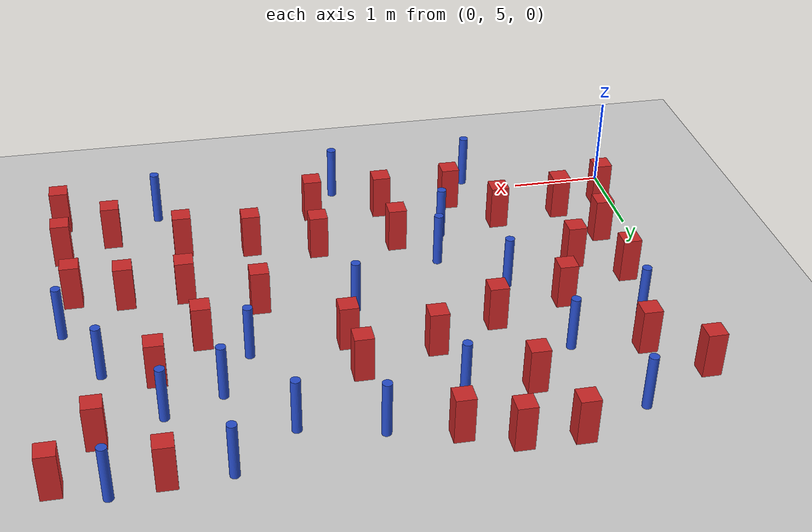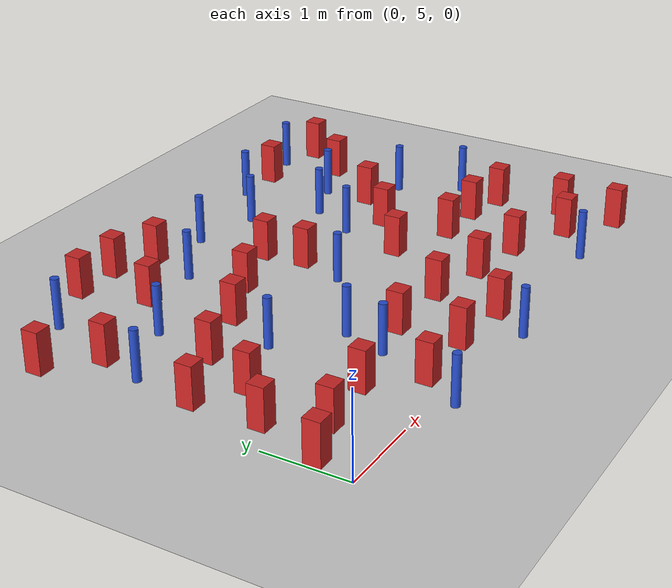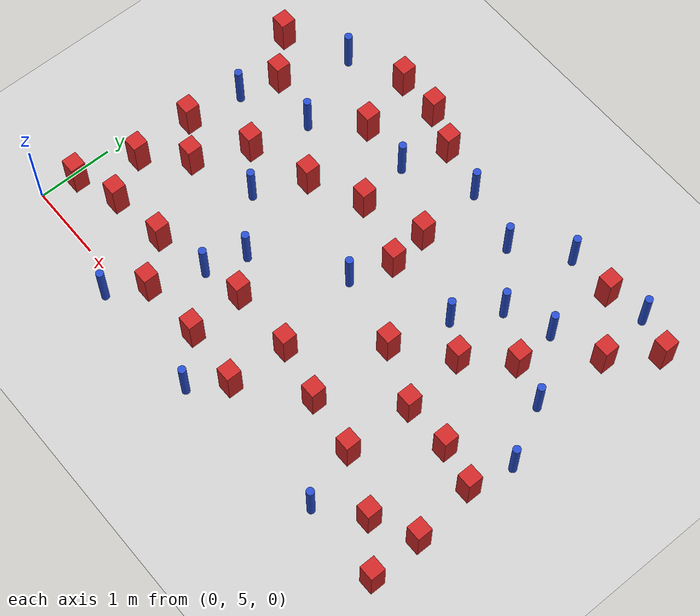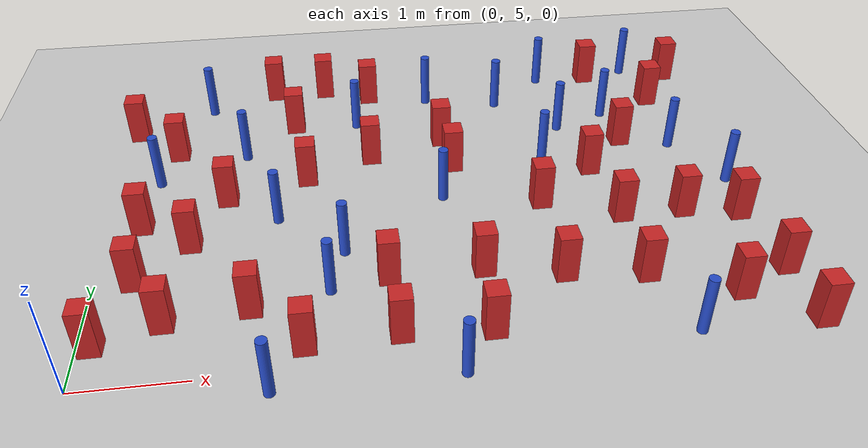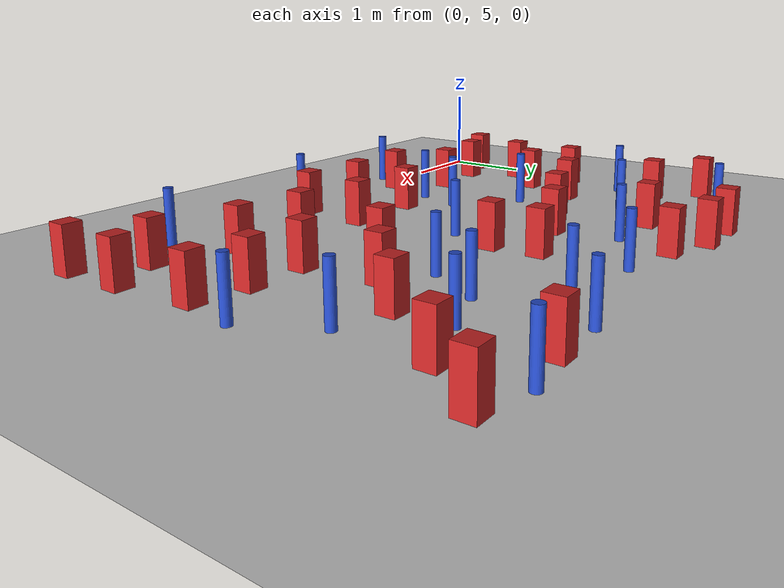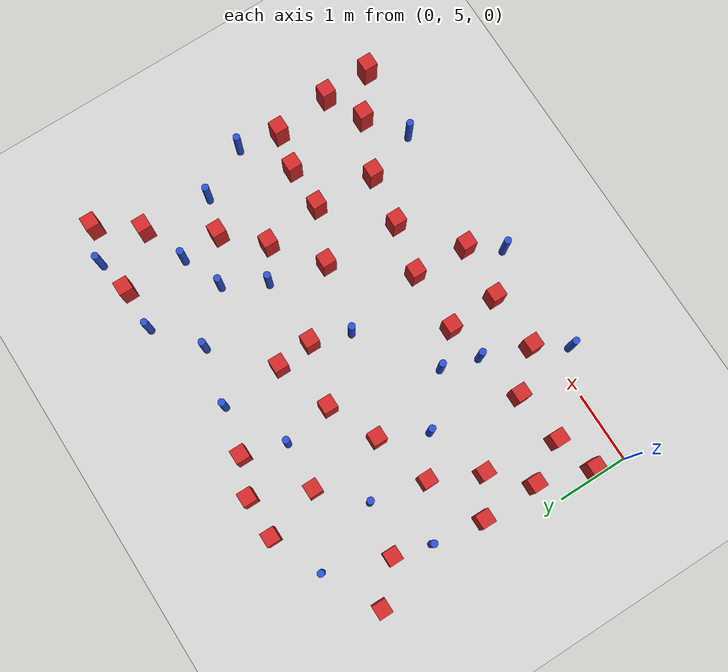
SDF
<sdf version="1.6">
 <world name="default">
  <model name="ground_plane">
   <static>1</static>
   <link name="link">
    <collision name="collision">
     <geometry><plane><normal>0 0 1</normal><size>100 100</size></plane></geometry>
     <surface><friction><ode><mu>100</mu><mu2>50</mu2></ode></friction></surface>
    </collision>
    <visual name="visual">
     <cast_shadows>0</cast_shadows>
     <geometry><plane><normal>0 0 1</normal><size>100 100</size></plane></geometry>
     <material>
      <ambient>1.0 1.0 1.0 1.0</ambient>
      <diffuse>0.8 0.8 0.8 1.0</diffuse>
      <specular>0.01 0.01 0.01 1.000000</specular>
     </material>
    </visual>
   </link>
  </model>
  <model name="pole_obstacle6">
   <static>true</static>
   <pose>4.22046325973 8.89876180597 2.88873142074e-08 -9.9053668967e-09 4.60219948993e-07 -1.20965994957e-07</pose>
   <link name="link">
    <pose>0 0 0.3 0 -0 0</pose>
    <inertial>
     <mass>1</mass>
     <inertia><ixx>0.145833</ixx><ixy>0</ixy><ixz>0</ixz><iyy>0.145833</iyy><iyz>0</iyz><izz>0.125</izz></inertia>
    </inertial>
    <collision name="collision">
     <geometry><cylinder><radius>0.05</radius><length>.6</length></cylinder></geometry>
    </collision>
    <visual name="visual">
     <geometry><cylinder><radius>0.05</radius><length>.6</length></cylinder></geometry>
     <material>
      <script><name>Gazebo/Blue</name><uri>file://media/materials/scripts/gazebo.material</uri></script>
     </material>
    </visual>
   </link>
  </model>
  <model name="square_post_obstacle2">
   <static>true</static>
   <pose>3.51886979271 5.21029539455 8.22691968438e-08 7.2212513382e-06 -7.54495500217e-07 2.29674213826e-05</pose>
   <link name="link">
    <pose>0 0 0.25 0 -0 0</pose>
    <inertial>
     <mass>100</mass>
     <inertia>
      <ixx>0.166667</ixx>
      <ixy>0</ixy>
      <ixz>0</ixz>
      <iyy>0.166667</iyy>
      <iyz>0</iyz>
      <izz>0.166667</izz>
     </inertia>
    </inertial>
    <collision name="collision"><geometry><box><size>.2 .2 .5</size></box></geometry></collision>
    <visual name="visual">
     <geometry><box><size>.2 .2 .5</size></box></geometry>
     <material>
      <script><name>Gazebo/Red</name><uri>file://media/materials/scripts/gazebo.material</uri></script>
     </material>
    </visual>
   </link>
  </model>
  <model name="pole_obstacle11">
   <static>true</static>
   <pose>3.21454982424 4.77770129587 2.88873142074e-08 -9.90536689859e-09 4.60219948989e-07 -1.20965994961e-07</pose>
   <link name="link">
    <pose>0 0 0.3 0 -0 0</pose>
    <inertial>
     <mass>1</mass>
     <inertia><ixx>0.145833</ixx><ixy>0</ixy><ixz>0</ixz><iyy>0.145833</iyy><iyz>0</iyz><izz>0.125</izz></inertia>
    </inertial>
    <collision name="collision">
     <geometry><cylinder><radius>0.05</radius><length>.6</length></cylinder></geometry>
    </collision>
    <visual name="visual">
     <geometry><cylinder><radius>0.05</radius><length>.6</length></cylinder></geometry>
     <material>
      <script><name>Gazebo/Blue</name><uri>file://media/materials/scripts/gazebo.material</uri></script>
     </material>
    </visual>
   </link>
  </model>
  <model name="square_post_obstacle9">
   <static>true</static>
   <pose>5.07672383665 6.60330566266 8.22691968438e-08 7.2212513382e-06 -7.54495500217e-07 2.29674213826e-05</pose>
   <link name="link">
    <pose>0 0 0.25 0 -0 0</pose>
    <inertial>
     <mass>100</mass>
     <inertia>
      <ixx>0.166667</ixx>
      <ixy>0</ixy>
      <ixz>0</ixz>
      <iyy>0.166667</iyy>
      <iyz>0</iyz>
      <izz>0.166667</izz>
     </inertia>
    </inertial>
    <collision name="collision"><geometry><box><size>.2 .2 .5</size></box></geometry></collision>
    <visual name="visual">
     <geometry><box><size>.2 .2 .5</size></box></geometry>
     <material>
      <script><name>Gazebo/Red</name><uri>file://media/materials/scripts/gazebo.material</uri></script>
     </material>
    </visual>
   </link>
  </model>
  <model name="pole_obstacle16">
   <static>true</static>
   <pose>2.30162837116 6.40875875563 2.88873142074e-08 -9.90536689859e-09 4.60219948989e-07 -1.20965994961e-07</pose>
   <link name="link">
    <pose>0 0 0.3 0 -0 0</pose>
    <inertial>
     <mass>1</mass>
     <inertia><ixx>0.145833</ixx><ixy>0</ixy><ixz>0</ixz><iyy>0.145833</iyy><iyz>0</iyz><izz>0.125</izz></inertia>
    </inertial>
    <collision name="collision">
     <geometry><cylinder><radius>0.05</radius><length>.6</length></cylinder></geometry>
    </collision>
    <visual name="visual">
     <geometry><cylinder><radius>0.05</radius><length>.6</length></cylinder></geometry>
     <material>
      <script><name>Gazebo/Blue</name><uri>file://media/materials/scripts/gazebo.material</uri></script>
     </material>
    </visual>
   </link>
  </model>
  <model name="square_post_obstacle13">
   <static>true</static>
   <pose>5.81158382822 5.38576274802 8.22691968438e-08 7.2212513382e-06 -7.54495500217e-07 2.29674213826e-05</pose>
   <link name="link">
    <pose>0 0 0.25 0 -0 0</pose>
    <inertial>
     <mass>100</mass>
     <inertia>
      <ixx>0.166667</ixx>
      <ixy>0</ixy>
      <ixz>0</ixz>
      <iyy>0.166667</iyy>
      <iyz>0</iyz>
      <izz>0.166667</izz>
     </inertia>
    </inertial>
    <collision name="collision"><geometry><box><size>.2 .2 .5</size></box></geometry></collision>
    <visual name="visual">
     <geometry><box><size>.2 .2 .5</size></box></geometry>
     <material>
      <script><name>Gazebo/Red</name><uri>file://media/materials/scripts/gazebo.material</uri></script>
     </material>
    </visual>
   </link>
  </model>
  <model name="square_post_obstacle15">
   <static>true</static>
   <pose>6.05378696804 8.75191636952 8.22691968438e-08 7.22125133819e-06 -7.54495500217e-07 2.29674213826e-05</pose>
   <link name="link">
    <pose>0 0 0.25 0 -0 0</pose>
    <inertial>
     <mass>100</mass>
     <inertia>
      <ixx>0.166667</ixx>
      <ixy>0</ixy>
      <ixz>0</ixz>
      <iyy>0.166667</iyy>
      <iyz>0</iyz>
      <izz>0.166667</izz>
     </inertia>
    </inertial>
    <collision name="collision"><geometry><box><size>.2 .2 .5</size></box></geometry></collision>
    <visual name="visual">
     <geometry><box><size>.2 .2 .5</size></box></geometry>
     <material>
      <script><name>Gazebo/Red</name><uri>file://media/materials/scripts/gazebo.material</uri></script>
     </material>
    </visual>
   </link>
  </model>
  <model name="pole_obstacle23">
   <static>true</static>
   <pose>1.32292772586 8.14820011121 2.88873142074e-08 -9.90536690474e-09 4.60219948974e-07 -1.2096599497e-07</pose>
   <link name="link">
    <pose>0 0 0.3 0 -0 0</pose>
    <inertial>
     <mass>1</mass>
     <inertia><ixx>0.145833</ixx><ixy>0</ixy><ixz>0</ixz><iyy>0.145833</iyy><iyz>0</iyz><izz>0.125</izz></inertia>
    </inertial>
    <collision name="collision">
     <geometry><cylinder><radius>0.05</radius><length>.6</length></cylinder></geometry>
    </collision>
    <visual name="visual">
     <geometry><cylinder><radius>0.05</radius><length>.6</length></cylinder></geometry>
     <material>
      <script><name>Gazebo/Blue</name><uri>file://media/materials/scripts/gazebo.material</uri></script>
     </material>
    </visual>
   </link>
  </model>
  <model name="square_post_obstacle24">
   <static>true</static>
   <pose>0.113420928763 8.74636391603 8.22691968438e-08 7.22125133819e-06 -7.54495500217e-07 2.29674213826e-05</pose>
   <link name="link">
    <pose>0 0 0.25 0 -0 0</pose>
    <inertial>
     <mass>100</mass>
     <inertia>
      <ixx>0.166667</ixx>
      <ixy>0</ixy>
      <ixz>0</ixz>
      <iyy>0.166667</iyy>
      <iyz>0</iyz>
      <izz>0.166667</izz>
     </inertia>
    </inertial>
    <collision name="collision"><geometry><box><size>.2 .2 .5</size></box></geometry></collision>
    <visual name="visual">
     <geometry><box><size>.2 .2 .5</size></box></geometry>
     <material>
      <script><name>Gazebo/Red</name><uri>file://media/materials/scripts/gazebo.material</uri></script>
     </material>
    </visual>
   </link>
  </model>
  <model name="square_post_obstacle25">
   <static>true</static>
   <pose>4.97284607775 7.43642797296 8.22691968438e-08 7.2212513382e-06 -7.54495500217e-07 2.29674213826e-05</pose>
   <link name="link">
    <pose>0 0 0.25 0 -0 0</pose>
    <inertial>
     <mass>100</mass>
     <inertia>
      <ixx>0.166667</ixx>
      <ixy>0</ixy>
      <ixz>0</ixz>
      <iyy>0.166667</iyy>
      <iyz>0</iyz>
      <izz>0.166667</izz>
     </inertia>
    </inertial>
    <collision name="collision"><geometry><box><size>.2 .2 .5</size></box></geometry></collision>
    <visual name="visual">
     <geometry><box><size>.2 .2 .5</size></box></geometry>
     <material>
      <script><name>Gazebo/Red</name><uri>file://media/materials/scripts/gazebo.material</uri></script>
     </material>
    </visual>
   </link>
  </model>
  <model name="square_post_obstacle30">
   <static>true</static>
   <pose>1.4470258372 5.73822127395 8.22691968438e-08 7.2212513382e-06 -7.54495500217e-07 2.29674213826e-05</pose>
   <link name="link">
    <pose>0 0 0.25 0 -0 0</pose>
    <inertial>
     <mass>100</mass>
     <inertia>
      <ixx>0.166667</ixx>
      <ixy>0</ixy>
      <ixz>0</ixz>
      <iyy>0.166667</iyy>
      <iyz>0</iyz>
      <izz>0.166667</izz>
     </inertia>
    </inertial>
    <collision name="collision"><geometry><box><size>.2 .2 .5</size></box></geometry></collision>
    <visual name="visual">
     <geometry><box><size>.2 .2 .5</size></box></geometry>
     <material>
      <script><name>Gazebo/Red</name><uri>file://media/materials/scripts/gazebo.material</uri></script>
     </material>
    </visual>
   </link>
  </model>
  <model name="pole_obstacle41">
   <static>true</static>
   <pose>0.899352378228 9.15873301165 2.88873142074e-08 -9.90536690779e-09 4.60219948967e-07 -1.20965994975e-07</pose>
   <link name="link">
    <pose>0 0 0.3 0 -0 0</pose>
    <inertial>
     <mass>1</mass>
     <inertia><ixx>0.145833</ixx><ixy>0</ixy><ixz>0</ixz><iyy>0.145833</iyy><iyz>0</iyz><izz>0.125</izz></inertia>
    </inertial>
    <collision name="collision">
     <geometry><cylinder><radius>0.05</radius><length>.6</length></cylinder></geometry>
    </collision>
    <visual name="visual">
     <geometry><cylinder><radius>0.05</radius><length>.6</length></cylinder></geometry>
     <material>
      <script><name>Gazebo/Blue</name><uri>file://media/materials/scripts/gazebo.material</uri></script>
     </material>
    </visual>
   </link>
  </model>
  <model name="square_post_obstacle31">
   <static>true</static>
   <pose>4.32650749568 6.92393562034 8.22691968438e-08 7.2212513382e-06 -7.54495500217e-07 2.29674213826e-05</pose>
   <link name="link">
    <pose>0 0 0.25 0 -0 0</pose>
    <inertial>
     <mass>100</mass>
     <inertia>
      <ixx>0.166667</ixx>
      <ixy>0</ixy>
      <ixz>0</ixz>
      <iyy>0.166667</iyy>
      <iyz>0</iyz>
      <izz>0.166667</izz>
     </inertia>
    </inertial>
    <collision name="collision"><geometry><box><size>.2 .2 .5</size></box></geometry></collision>
    <visual name="visual">
     <geometry><box><size>.2 .2 .5</size></box></geometry>
     <material>
      <script><name>Gazebo/Red</name><uri>file://media/materials/scripts/gazebo.material</uri></script>
     </material>
    </visual>
   </link>
  </model>
  <model name="pole_obstacle43">
   <static>true</static>
   <pose>3.40829630708 9.08948920971 2.88873142074e-08 -9.90536692318e-09 4.6021994893e-07 -1.20965994988e-07</pose>
   <link name="link">
    <pose>0 0 0.3 0 -0 0</pose>
    <inertial>
     <mass>1</mass>
     <inertia><ixx>0.145833</ixx><ixy>0</ixy><ixz>0</ixz><iyy>0.145833</iyy><iyz>0</iyz><izz>0.125</izz></inertia>
    </inertial>
    <collision name="collision">
     <geometry><cylinder><radius>0.05</radius><length>.6</length></cylinder></geometry>
    </collision>
    <visual name="visual">
     <geometry><cylinder><radius>0.05</radius><length>.6</length></cylinder></geometry>
     <material>
      <script><name>Gazebo/Blue</name><uri>file://media/materials/scripts/gazebo.material</uri></script>
     </material>
    </visual>
   </link>
  </model>
  <model name="square_post_obstacle38">
   <static>true</static>
   <pose>3.56726255685 5.98754879618 8.22691968438e-08 7.2212513382e-06 -7.54495500217e-07 2.29674213826e-05</pose>
   <link name="link">
    <pose>0 0 0.25 0 -0 0</pose>
    <inertial>
     <mass>100</mass>
     <inertia>
      <ixx>0.166667</ixx>
      <ixy>0</ixy>
      <ixz>0</ixz>
      <iyy>0.166667</iyy>
      <iyz>0</iyz>
      <izz>0.166667</izz>
     </inertia>
    </inertial>
    <collision name="collision"><geometry><box><size>.2 .2 .5</size></box></geometry></collision>
    <visual name="visual">
     <geometry><box><size>.2 .2 .5</size></box></geometry>
     <material>
      <script><name>Gazebo/Red</name><uri>file://media/materials/scripts/gazebo.material</uri></script>
     </material>
    </visual>
   </link>
  </model>
  <model name="pole_obstacle55">
   <static>true</static>
   <pose>0.443394616955 7.76191521064 2.88873142074e-08 -9.90536689683e-09 4.60219948993e-07 -1.20965994957e-07</pose>
   <link name="link">
    <pose>0 0 0.3 0 -0 0</pose>
    <inertial>
     <mass>1</mass>
     <inertia><ixx>0.145833</ixx><ixy>0</ixy><ixz>0</ixz><iyy>0.145833</iyy><iyz>0</iyz><izz>0.125</izz></inertia>
    </inertial>
    <collision name="collision">
     <geometry><cylinder><radius>0.05</radius><length>.6</length></cylinder></geometry>
    </collision>
    <visual name="visual">
     <geometry><cylinder><radius>0.05</radius><length>.6</length></cylinder></geometry>
     <material>
      <script><name>Gazebo/Blue</name><uri>file://media/materials/scripts/gazebo.material</uri></script>
     </material>
    </visual>
   </link>
  </model>
  <model name="pole_obstacle56">
   <static>true</static>
   <pose>4.52452395426 7.71323931481 2.88873142074e-08 -9.90536690842e-09 4.60219948965e-07 -1.20965994976e-07</pose>
   <link name="link">
    <pose>0 0 0.3 0 -0 0</pose>
    <inertial>
     <mass>1</mass>
     <inertia><ixx>0.145833</ixx><ixy>0</ixy><ixz>0</ixz><iyy>0.145833</iyy><iyz>0</iyz><izz>0.125</izz></inertia>
    </inertial>
    <collision name="collision">
     <geometry><cylinder><radius>0.05</radius><length>.6</length></cylinder></geometry>
    </collision>
    <visual name="visual">
     <geometry><cylinder><radius>0.05</radius><length>.6</length></cylinder></geometry>
     <material>
      <script><name>Gazebo/Blue</name><uri>file://media/materials/scripts/gazebo.material</uri></script>
     </material>
    </visual>
   </link>
  </model>
  <model name="pole_obstacle64">
   <static>true</static>
   <pose>5.96547266339 9.49017356136 2.88873142074e-08 -9.9053668967e-09 4.60219948993e-07 -1.20965994957e-07</pose>
   <link name="link">
    <pose>0 0 0.3 0 -0 0</pose>
    <inertial>
     <mass>1</mass>
     <inertia><ixx>0.145833</ixx><ixy>0</ixy><ixz>0</ixz><iyy>0.145833</iyy><iyz>0</iyz><izz>0.125</izz></inertia>
    </inertial>
    <collision name="collision">
     <geometry><cylinder><radius>0.05</radius><length>.6</length></cylinder></geometry>
    </collision>
    <visual name="visual">
     <geometry><cylinder><radius>0.05</radius><length>.6</length></cylinder></geometry>
     <material>
      <script><name>Gazebo/Blue</name><uri>file://media/materials/scripts/gazebo.material</uri></script>
     </material>
    </visual>
   </link>
  </model>
  <model name="square_post_obstacle50">
   <static>true</static>
   <pose>5.04219597152 5.71919740872 8.22691968438e-08 7.2212513382e-06 -7.54495500217e-07 2.29674213826e-05</pose>
   <link name="link">
    <pose>0 0 0.25 0 -0 0</pose>
    <inertial>
     <mass>100</mass>
     <inertia>
      <ixx>0.166667</ixx>
      <ixy>0</ixy>
      <ixz>0</ixz>
      <iyy>0.166667</iyy>
      <iyz>0</iyz>
      <izz>0.166667</izz>
     </inertia>
    </inertial>
    <collision name="collision"><geometry><box><size>.2 .2 .5</size></box></geometry></collision>
    <visual name="visual">
     <geometry><box><size>.2 .2 .5</size></box></geometry>
     <material>
      <script><name>Gazebo/Red</name><uri>file://media/materials/scripts/gazebo.material</uri></script>
     </material>
    </visual>
   </link>
  </model>
  <model name="square_post_obstacle52">
   <static>true</static>
   <pose>0.133570180541 5.45676671177 8.22691968438e-08 7.2212513382e-06 -7.54495500217e-07 2.29674213826e-05</pose>
   <link name="link">
    <pose>0 0 0.25 0 -0 0</pose>
    <inertial>
     <mass>100</mass>
     <inertia>
      <ixx>0.166667</ixx>
      <ixy>0</ixy>
      <ixz>0</ixz>
      <iyy>0.166667</iyy>
      <iyz>0</iyz>
      <izz>0.166667</izz>
     </inertia>
    </inertial>
    <collision name="collision"><geometry><box><size>.2 .2 .5</size></box></geometry></collision>
    <visual name="visual">
     <geometry><box><size>.2 .2 .5</size></box></geometry>
     <material>
      <script><name>Gazebo/Red</name><uri>file://media/materials/scripts/gazebo.material</uri></script>
     </material>
    </visual>
   </link>
  </model>
  <model name="square_post_obstacle56">
   <static>true</static>
   <pose>1.62956645404 9.46225908693 8.22691968438e-08 7.22125133819e-06 -7.54495500217e-07 2.29674213826e-05</pose>
   <link name="link">
    <pose>0 0 0.25 0 -0 0</pose>
    <inertial>
     <mass>100</mass>
     <inertia>
      <ixx>0.166667</ixx>
      <ixy>0</ixy>
      <ixz>0</ixz>
      <iyy>0.166667</iyy>
      <iyz>0</iyz>
      <izz>0.166667</izz>
     </inertia>
    </inertial>
    <collision name="collision"><geometry><box><size>.2 .2 .5</size></box></geometry></collision>
    <visual name="visual">
     <geometry><box><size>.2 .2 .5</size></box></geometry>
     <material>
      <script><name>Gazebo/Red</name><uri>file://media/materials/scripts/gazebo.material</uri></script>
     </material>
    </visual>
   </link>
  </model>
  <model name="square_post_obstacle65">
   <static>true</static>
   <pose>1.90731623586 5.23412859087 8.22691968438e-08 7.2212513382e-06 -7.54495500217e-07 2.29674213826e-05</pose>
   <link name="link">
    <pose>0 0 0.25 0 -0 0</pose>
    <inertial>
     <mass>100</mass>
     <inertia>
      <ixx>0.166667</ixx>
      <ixy>0</ixy>
      <ixz>0</ixz>
      <iyy>0.166667</iyy>
      <iyz>0</iyz>
      <izz>0.166667</izz>
     </inertia>
    </inertial>
    <collision name="collision"><geometry><box><size>.2 .2 .5</size></box></geometry></collision>
    <visual name="visual">
     <geometry><box><size>.2 .2 .5</size></box></geometry>
     <material>
      <script><name>Gazebo/Red</name><uri>file://media/materials/scripts/gazebo.material</uri></script>
     </material>
    </visual>
   </link>
  </model>
  <model name="square_post_obstacle66">
   <static>true</static>
   <pose>2.73113315941 9.24209433608 8.22691968438e-08 7.22125133819e-06 -7.54495500217e-07 2.29674213826e-05</pose>
   <link name="link">
    <pose>0 0 0.25 0 -0 0</pose>
    <inertial>
     <mass>100</mass>
     <inertia>
      <ixx>0.166667</ixx>
      <ixy>0</ixy>
      <ixz>0</ixz>
      <iyy>0.166667</iyy>
      <iyz>0</iyz>
      <izz>0.166667</izz>
     </inertia>
    </inertial>
    <collision name="collision"><geometry><box><size>.2 .2 .5</size></box></geometry></collision>
    <visual name="visual">
     <geometry><box><size>.2 .2 .5</size></box></geometry>
     <material>
      <script><name>Gazebo/Red</name><uri>file://media/materials/scripts/gazebo.material</uri></script>
     </material>
    </visual>
   </link>
  </model>
  <model name="square_post_obstacle68">
   <static>true</static>
   <pose>5.45128388711 9.38837965538 8.22691968438e-08 7.22125133819e-06 -7.54495500217e-07 2.29674213826e-05</pose>
   <link name="link">
    <pose>0 0 0.25 0 -0 0</pose>
    <inertial>
     <mass>100</mass>
     <inertia>
      <ixx>0.166667</ixx>
      <ixy>0</ixy>
      <ixz>0</ixz>
      <iyy>0.166667</iyy>
      <iyz>0</iyz>
      <izz>0.166667</izz>
     </inertia>
    </inertial>
    <collision name="collision"><geometry><box><size>.2 .2 .5</size></box></geometry></collision>
    <visual name="visual">
     <geometry><box><size>.2 .2 .5</size></box></geometry>
     <material>
      <script><name>Gazebo/Red</name><uri>file://media/materials/scripts/gazebo.material</uri></script>
     </material>
    </visual>
   </link>
  </model>
  <model name="square_post_obstacle72">
   <static>true</static>
   <pose>0.845611340505 6.69355127158 8.22691968438e-08 7.2212513382e-06 -7.54495500217e-07 2.29674213826e-05</pose>
   <link name="link">
    <pose>0 0 0.25 0 -0 0</pose>
    <inertial>
     <mass>100</mass>
     <inertia>
      <ixx>0.166667</ixx>
      <ixy>0</ixy>
      <ixz>0</ixz>
      <iyy>0.166667</iyy>
      <iyz>0</iyz>
      <izz>0.166667</izz>
     </inertia>
    </inertial>
    <collision name="collision"><geometry><box><size>.2 .2 .5</size></box></geometry></collision>
    <visual name="visual">
     <geometry><box><size>.2 .2 .5</size></box></geometry>
     <material>
      <script><name>Gazebo/Red</name><uri>file://media/materials/scripts/gazebo.material</uri></script>
     </material>
    </visual>
   </link>
  </model>
  <model name="square_post_obstacle90">
   <static>true</static>
   <pose>1.16206302694 7.3760330887 8.22691968438e-08 7.2212513382e-06 -7.54495500217e-07 2.29674213826e-05</pose>
   <link name="link">
    <pose>0 0 0.25 0 -0 0</pose>
    <inertial>
     <mass>100</mass>
     <inertia>
      <ixx>0.166667</ixx>
      <ixy>0</ixy>
      <ixz>0</ixz>
      <iyy>0.166667</iyy>
      <iyz>0</iyz>
      <izz>0.166667</izz>
     </inertia>
    </inertial>
    <collision name="collision"><geometry><box><size>.2 .2 .5</size></box></geometry></collision>
    <visual name="visual">
     <geometry><box><size>.2 .2 .5</size></box></geometry>
     <material>
      <script><name>Gazebo/Red</name><uri>file://media/materials/scripts/gazebo.material</uri></script>
     </material>
    </visual>
   </link>
  </model>
  <model name="square_post_obstacle93">
   <static>true</static>
   <pose>2.66865635406 7.94502433171 8.22691968438e-08 7.22125133819e-06 -7.54495500217e-07 2.29674213826e-05</pose>
   <link name="link">
    <pose>0 0 0.25 0 -0 0</pose>
    <inertial>
     <mass>100</mass>
     <inertia>
      <ixx>0.166667</ixx>
      <ixy>0</ixy>
      <ixz>0</ixz>
      <iyy>0.166667</iyy>
      <iyz>0</iyz>
      <izz>0.166667</izz>
     </inertia>
    </inertial>
    <collision name="collision"><geometry><box><size>.2 .2 .5</size></box></geometry></collision>
    <visual name="visual">
     <geometry><box><size>.2 .2 .5</size></box></geometry>
     <material>
      <script><name>Gazebo/Red</name><uri>file://media/materials/scripts/gazebo.material</uri></script>
     </material>
    </visual>
   </link>
  </model>
  <model name="pole_obstacle104">
   <static>true</static>
   <pose>2.55107720086 8.64581301646 2.88873142074e-08 -9.90536692318e-09 4.6021994893e-07 -1.20965994988e-07</pose>
   <link name="link">
    <pose>0 0 0.3 0 -0 0</pose>
    <inertial>
     <mass>1</mass>
     <inertia><ixx>0.145833</ixx><ixy>0</ixy><ixz>0</ixz><iyy>0.145833</iyy><iyz>0</iyz><izz>0.125</izz></inertia>
    </inertial>
    <collision name="collision">
     <geometry><cylinder><radius>0.05</radius><length>.6</length></cylinder></geometry>
    </collision>
    <visual name="visual">
     <geometry><cylinder><radius>0.05</radius><length>.6</length></cylinder></geometry>
     <material>
      <script><name>Gazebo/Blue</name><uri>file://media/materials/scripts/gazebo.material</uri></script>
     </material>
    </visual>
   </link>
  </model>
  <model name="pole_obstacle105">
   <static>true</static>
   <pose>5.42131177291 8.51209517468 2.88873142074e-08 -9.9053668967e-09 4.60219948993e-07 -1.20965994957e-07</pose>
   <link name="link">
    <pose>0 0 0.3 0 -0 0</pose>
    <inertial>
     <mass>1</mass>
     <inertia><ixx>0.145833</ixx><ixy>0</ixy><ixz>0</ixz><iyy>0.145833</iyy><iyz>0</iyz><izz>0.125</izz></inertia>
    </inertial>
    <collision name="collision">
     <geometry><cylinder><radius>0.05</radius><length>.6</length></cylinder></geometry>
    </collision>
    <visual name="visual">
     <geometry><cylinder><radius>0.05</radius><length>.6</length></cylinder></geometry>
     <material>
      <script><name>Gazebo/Blue</name><uri>file://media/materials/scripts/gazebo.material</uri></script>
     </material>
    </visual>
   </link>
  </model>
  <model name="pole_obstacle106">
   <static>true</static>
   <pose>3.34924388034 7.14173322824 2.88873142074e-08 -9.90536689859e-09 4.60219948989e-07 -1.20965994961e-07</pose>
   <link name="link">
    <pose>0 0 0.3 0 -0 0</pose>
    <inertial>
     <mass>1</mass>
     <inertia><ixx>0.145833</ixx><ixy>0</ixy><ixz>0</ixz><iyy>0.145833</iyy><iyz>0</iyz><izz>0.125</izz></inertia>
    </inertial>
    <collision name="collision">
     <geometry><cylinder><radius>0.05</radius><length>.6</length></cylinder></geometry>
    </collision>
    <visual name="visual">
     <geometry><cylinder><radius>0.05</radius><length>.6</length></cylinder></geometry>
     <material>
      <script><name>Gazebo/Blue</name><uri>file://media/materials/scripts/gazebo.material</uri></script>
     </material>
    </visual>
   </link>
  </model>
  <model name="square_post_obstacle104">
   <static>true</static>
   <pose>5.70959949036 6.59898730295 8.22691968438e-08 7.2212513382e-06 -7.54495500217e-07 2.29674213826e-05</pose>
   <link name="link">
    <pose>0 0 0.25 0 -0 0</pose>
    <inertial>
     <mass>100</mass>
     <inertia>
      <ixx>0.166667</ixx>
      <ixy>0</ixy>
      <ixz>0</ixz>
      <iyy>0.166667</iyy>
      <iyz>0</iyz>
      <izz>0.166667</izz>
     </inertia>
    </inertial>
    <collision name="collision"><geometry><box><size>.2 .2 .5</size></box></geometry></collision>
    <visual name="visual">
     <geometry><box><size>.2 .2 .5</size></box></geometry>
     <material>
      <script><name>Gazebo/Red</name><uri>file://media/materials/scripts/gazebo.material</uri></script>
     </material>
    </visual>
   </link>
  </model>
  <model name="pole_obstacle114">
   <static>true</static>
   <pose>1.61997766648 4.78340791397 2.88873142074e-08 -9.90536689852e-09 4.60219948989e-07 -1.2096599496e-07</pose>
   <link name="link">
    <pose>0 0 0.3 0 -0 0</pose>
    <inertial>
     <mass>1</mass>
     <inertia><ixx>0.145833</ixx><ixy>0</ixy><ixz>0</ixz><iyy>0.145833</iyy><iyz>0</iyz><izz>0.125</izz></inertia>
    </inertial>
    <collision name="collision">
     <geometry><cylinder><radius>0.05</radius><length>.6</length></cylinder></geometry>
    </collision>
    <visual name="visual">
     <geometry><cylinder><radius>0.05</radius><length>.6</length></cylinder></geometry>
     <material>
      <script><name>Gazebo/Blue</name><uri>file://media/materials/scripts/gazebo.material</uri></script>
     </material>
    </visual>
   </link>
  </model>
  <model name="square_post_obstacle111">
   <static>true</static>
   <pose>3.46966602128 8.19968832513 8.22691968438e-08 7.22125133819e-06 -7.54495500217e-07 2.29674213826e-05</pose>
   <link name="link">
    <pose>0 0 0.25 0 -0 0</pose>
    <inertial>
     <mass>100</mass>
     <inertia>
      <ixx>0.166667</ixx>
      <ixy>0</ixy>
      <ixz>0</ixz>
      <iyy>0.166667</iyy>
      <iyz>0</iyz>
      <izz>0.166667</izz>
     </inertia>
    </inertial>
    <collision name="collision"><geometry><box><size>.2 .2 .5</size></box></geometry></collision>
    <visual name="visual">
     <geometry><box><size>.2 .2 .5</size></box></geometry>
     <material>
      <script><name>Gazebo/Red</name><uri>file://media/materials/scripts/gazebo.material</uri></script>
     </material>
    </visual>
   </link>
  </model>
  <model name="square_post_obstacle113">
   <static>true</static>
   <pose>0.697155674342 5.65302463057 8.22691968438e-08 7.2212513382e-06 -7.54495500217e-07 2.29674213826e-05</pose>
   <link name="link">
    <pose>0 0 0.25 0 -0 0</pose>
    <inertial>
     <mass>100</mass>
     <inertia>
      <ixx>0.166667</ixx>
      <ixy>0</ixy>
      <ixz>0</ixz>
      <iyy>0.166667</iyy>
      <iyz>0</iyz>
      <izz>0.166667</izz>
     </inertia>
    </inertial>
    <collision name="collision"><geometry><box><size>.2 .2 .5</size></box></geometry></collision>
    <visual name="visual">
     <geometry><box><size>.2 .2 .5</size></box></geometry>
     <material>
      <script><name>Gazebo/Red</name><uri>file://media/materials/scripts/gazebo.material</uri></script>
     </material>
    </visual>
   </link>
  </model>
  <model name="square_post_obstacle116">
   <static>true</static>
   <pose>6.45632784729 9.31877201313 8.22691968438e-08 7.22125133819e-06 -7.54495500217e-07 2.29674213826e-05</pose>
   <link name="link">
    <pose>0 0 0.25 0 -0 0</pose>
    <inertial>
     <mass>100</mass>
     <inertia>
      <ixx>0.166667</ixx>
      <ixy>0</ixy>
      <ixz>0</ixz>
      <iyy>0.166667</iyy>
      <iyz>0</iyz>
      <izz>0.166667</izz>
     </inertia>
    </inertial>
    <collision name="collision"><geometry><box><size>.2 .2 .5</size></box></geometry></collision>
    <visual name="visual">
     <geometry><box><size>.2 .2 .5</size></box></geometry>
     <material>
      <script><name>Gazebo/Red</name><uri>file://media/materials/scripts/gazebo.material</uri></script>
     </material>
    </visual>
   </link>
  </model>
  <model name="pole_obstacle121">
   <static>true</static>
   <pose>6.37049987156 7.05702769871 2.88873142074e-08 -9.90536690842e-09 4.60219948965e-07 -1.20965994976e-07</pose>
   <link name="link">
    <pose>0 0 0.3 0 -0 0</pose>
    <inertial>
     <mass>1</mass>
     <inertia><ixx>0.145833</ixx><ixy>0</ixy><ixz>0</ixz><iyy>0.145833</iyy><iyz>0</iyz><izz>0.125</izz></inertia>
    </inertial>
    <collision name="collision">
     <geometry><cylinder><radius>0.05</radius><length>.6</length></cylinder></geometry>
    </collision>
    <visual name="visual">
     <geometry><cylinder><radius>0.05</radius><length>.6</length></cylinder></geometry>
     <material>
      <script><name>Gazebo/Blue</name><uri>file://media/materials/scripts/gazebo.material</uri></script>
     </material>
    </visual>
   </link>
  </model>
  <model name="pole_obstacle125">
   <static>true</static>
   <pose>5.28513373353 4.97409333417 2.88873142074e-08 -9.90536690842e-09 4.60219948965e-07 -1.20965994976e-07</pose>
   <link name="link">
    <pose>0 0 0.3 0 -0 0</pose>
    <inertial>
     <mass>1</mass>
     <inertia><ixx>0.145833</ixx><ixy>0</ixy><ixz>0</ixz><iyy>0.145833</iyy><iyz>0</iyz><izz>0.125</izz></inertia>
    </inertial>
    <collision name="collision">
     <geometry><cylinder><radius>0.05</radius><length>.6</length></cylinder></geometry>
    </collision>
    <visual name="visual">
     <geometry><cylinder><radius>0.05</radius><length>.6</length></cylinder></geometry>
     <material>
      <script><name>Gazebo/Blue</name><uri>file://media/materials/scripts/gazebo.material</uri></script>
     </material>
    </visual>
   </link>
  </model>
  <model name="square_post_obstacle124">
   <static>true</static>
   <pose>2.68617334606 5.99470783008 8.22691968438e-08 7.2212513382e-06 -7.54495500217e-07 2.29674213826e-05</pose>
   <link name="link">
    <pose>0 0 0.25 0 -0 0</pose>
    <inertial>
     <mass>100</mass>
     <inertia>
      <ixx>0.166667</ixx>
      <ixy>0</ixy>
      <ixz>0</ixz>
      <iyy>0.166667</iyy>
      <iyz>0</iyz>
      <izz>0.166667</izz>
     </inertia>
    </inertial>
    <collision name="collision"><geometry><box><size>.2 .2 .5</size></box></geometry></collision>
    <visual name="visual">
     <geometry><box><size>.2 .2 .5</size></box></geometry>
     <material>
      <script><name>Gazebo/Red</name><uri>file://media/materials/scripts/gazebo.material</uri></script>
     </material>
    </visual>
   </link>
  </model>
  <model name="square_post_obstacle130">
   <static>true</static>
   <pose>0.350626073407 7.03253293599 8.22691968438e-08 7.22125133819e-06 -7.54495500217e-07 2.29674213826e-05</pose>
   <link name="link">
    <pose>0 0 0.25 0 -0 0</pose>
    <inertial>
     <mass>100</mass>
     <inertia>
      <ixx>0.166667</ixx>
      <ixy>0</ixy>
      <ixz>0</ixz>
      <iyy>0.166667</iyy>
      <iyz>0</iyz>
      <izz>0.166667</izz>
     </inertia>
    </inertial>
    <collision name="collision"><geometry><box><size>.2 .2 .5</size></box></geometry></collision>
    <visual name="visual">
     <geometry><box><size>.2 .2 .5</size></box></geometry>
     <material>
      <script><name>Gazebo/Red</name><uri>file://media/materials/scripts/gazebo.material</uri></script>
     </material>
    </visual>
   </link>
  </model>
  <model name="square_post_obstacle132">
   <static>true</static>
   <pose>0.373126265217 6.22156151934 8.22691968438e-08 7.22125133819e-06 -7.54495500217e-07 2.29674213826e-05</pose>
   <link name="link">
    <pose>0 0 0.25 0 -0 0</pose>
    <inertial>
     <mass>100</mass>
     <inertia>
      <ixx>0.166667</ixx>
      <ixy>0</ixy>
      <ixz>0</ixz>
      <iyy>0.166667</iyy>
      <iyz>0</iyz>
      <izz>0.166667</izz>
     </inertia>
    </inertial>
    <collision name="collision"><geometry><box><size>.2 .2 .5</size></box></geometry></collision>
    <visual name="visual">
     <geometry><box><size>.2 .2 .5</size></box></geometry>
     <material>
      <script><name>Gazebo/Red</name><uri>file://media/materials/scripts/gazebo.material</uri></script>
     </material>
    </visual>
   </link>
  </model>
  <model name="square_post_obstacle138">
   <static>true</static>
   <pose>6.37076695121 4.96121961259 8.22691968438e-08 7.2212513382e-06 -7.54495500217e-07 2.29674213826e-05</pose>
   <link name="link">
    <pose>0 0 0.25 0 -0 0</pose>
    <inertial>
     <mass>100</mass>
     <inertia>
      <ixx>0.166667</ixx>
      <ixy>0</ixy>
      <ixz>0</ixz>
      <iyy>0.166667</iyy>
      <iyz>0</iyz>
      <izz>0.166667</izz>
     </inertia>
    </inertial>
    <collision name="collision"><geometry><box><size>.2 .2 .5</size></box></geometry></collision>
    <visual name="visual">
     <geometry><box><size>.2 .2 .5</size></box></geometry>
     <material>
      <script><name>Gazebo/Red</name><uri>file://media/materials/scripts/gazebo.material</uri></script>
     </material>
    </visual>
   </link>
  </model>
  <model name="square_post_obstacle139">
   <static>true</static>
   <pose>0.591694230661 8.28052600076 8.22691968438e-08 7.22125133819e-06 -7.54495500217e-07 2.29674213826e-05</pose>
   <link name="link">
    <pose>0 0 0.25 0 -0 0</pose>
    <inertial>
     <mass>100</mass>
     <inertia>
      <ixx>0.166667</ixx>
      <ixy>0</ixy>
      <ixz>0</ixz>
      <iyy>0.166667</iyy>
      <iyz>0</iyz>
      <izz>0.166667</izz>
     </inertia>
    </inertial>
    <collision name="collision"><geometry><box><size>.2 .2 .5</size></box></geometry></collision>
    <visual name="visual">
     <geometry><box><size>.2 .2 .5</size></box></geometry>
     <material>
      <script><name>Gazebo/Red</name><uri>file://media/materials/scripts/gazebo.material</uri></script>
     </material>
    </visual>
   </link>
  </model>
  <model name="pole_obstacle146">
   <static>true</static>
   <pose>4.8492098091 9.39638462733 2.88873142074e-08 -9.9053668967e-09 4.60219948993e-07 -1.20965994957e-07</pose>
   <link name="link">
    <pose>0 0 0.3 0 -0 0</pose>
    <inertial>
     <mass>1</mass>
     <inertia><ixx>0.145833</ixx><ixy>0</ixy><ixz>0</ixz><iyy>0.145833</iyy><iyz>0</iyz><izz>0.125</izz></inertia>
    </inertial>
    <collision name="collision">
     <geometry><cylinder><radius>0.05</radius><length>.6</length></cylinder></geometry>
    </collision>
    <visual name="visual">
     <geometry><cylinder><radius>0.05</radius><length>.6</length></cylinder></geometry>
     <material>
      <script><name>Gazebo/Blue</name><uri>file://media/materials/scripts/gazebo.material</uri></script>
     </material>
    </visual>
   </link>
  </model>
  <model name="square_post_obstacle141">
   <static>true</static>
   <pose>5.46033009388 7.94250431293 8.22691968438e-08 7.22125133819e-06 -7.54495500217e-07 2.29674213826e-05</pose>
   <link name="link">
    <pose>0 0 0.25 0 -0 0</pose>
    <inertial>
     <mass>100</mass>
     <inertia>
      <ixx>0.166667</ixx>
      <ixy>0</ixy>
      <ixz>0</ixz>
      <iyy>0.166667</iyy>
      <iyz>0</iyz>
      <izz>0.166667</izz>
     </inertia>
    </inertial>
    <collision name="collision"><geometry><box><size>.2 .2 .5</size></box></geometry></collision>
    <visual name="visual">
     <geometry><box><size>.2 .2 .5</size></box></geometry>
     <material>
      <script><name>Gazebo/Red</name><uri>file://media/materials/scripts/gazebo.material</uri></script>
     </material>
    </visual>
   </link>
  </model>
  <model name="pole_obstacle156">
   <static>true</static>
   <pose>5.99155398791 7.77803645643 2.88873142074e-08 -9.90536690842e-09 4.60219948965e-07 -1.20965994976e-07</pose>
   <link name="link">
    <pose>0 0 0.3 0 -0 0</pose>
    <inertial>
     <mass>1</mass>
     <inertia><ixx>0.145833</ixx><ixy>0</ixy><ixz>0</ixz><iyy>0.145833</iyy><iyz>0</iyz><izz>0.125</izz></inertia>
    </inertial>
    <collision name="collision">
     <geometry><cylinder><radius>0.05</radius><length>.6</length></cylinder></geometry>
    </collision>
    <visual name="visual">
     <geometry><cylinder><radius>0.05</radius><length>.6</length></cylinder></geometry>
     <material>
      <script><name>Gazebo/Blue</name><uri>file://media/materials/scripts/gazebo.material</uri></script>
     </material>
    </visual>
   </link>
  </model>
  <model name="pole_obstacle163">
   <static>true</static>
   <pose>1.66989396718 6.98751966644 2.88873142074e-08 -9.90536689852e-09 4.60219948989e-07 -1.2096599496e-07</pose>
   <link name="link">
    <pose>0 0 0.3 0 -0 0</pose>
    <inertial>
     <mass>1</mass>
     <inertia><ixx>0.145833</ixx><ixy>0</ixy><ixz>0</ixz><iyy>0.145833</iyy><iyz>0</iyz><izz>0.125</izz></inertia>
    </inertial>
    <collision name="collision">
     <geometry><cylinder><radius>0.05</radius><length>.6</length></cylinder></geometry>
    </collision>
    <visual name="visual">
     <geometry><cylinder><radius>0.05</radius><length>.6</length></cylinder></geometry>
     <material>
      <script><name>Gazebo/Blue</name><uri>file://media/materials/scripts/gazebo.material</uri></script>
     </material>
    </visual>
   </link>
  </model>
  <model name="square_post_obstacle156">
   <static>true</static>
   <pose>4.29539423825 5.82588167289 8.22691968438e-08 7.2212513382e-06 -7.54495500217e-07 2.29674213826e-05</pose>
   <link name="link">
    <pose>0 0 0.25 0 -0 0</pose>
    <inertial>
     <mass>100</mass>
     <inertia>
      <ixx>0.166667</ixx>
      <ixy>0</ixy>
      <ixz>0</ixz>
      <iyy>0.166667</iyy>
      <iyz>0</iyz>
      <izz>0.166667</izz>
     </inertia>
    </inertial>
    <collision name="collision"><geometry><box><size>.2 .2 .5</size></box></geometry></collision>
    <visual name="visual">
     <geometry><box><size>.2 .2 .5</size></box></geometry>
     <material>
      <script><name>Gazebo/Red</name><uri>file://media/materials/scripts/gazebo.material</uri></script>
     </material>
    </visual>
   </link>
  </model>
  <model name="square_post_obstacle172">
   <static>true</static>
   <pose>1.97349506194 7.62937021632 8.22691968438e-08 7.2212513382e-06 -7.54495500217e-07 2.29674213826e-05</pose>
   <link name="link">
    <pose>0 0 0.25 0 -0 0</pose>
    <inertial>
     <mass>100</mass>
     <inertia>
      <ixx>0.166667</ixx>
      <ixy>0</ixy>
      <ixz>0</ixz>
      <iyy>0.166667</iyy>
      <iyz>0</iyz>
      <izz>0.166667</izz>
     </inertia>
    </inertial>
    <collision name="collision"><geometry><box><size>.2 .2 .5</size></box></geometry></collision>
    <visual name="visual">
     <geometry><box><size>.2 .2 .5</size></box></geometry>
     <material>
      <script><name>Gazebo/Red</name><uri>file://media/materials/scripts/gazebo.material</uri></script>
     </material>
    </visual>
   </link>
  </model>
  <model name="square_post_obstacle175">
   <static>true</static>
   <pose>1.8592400365 8.68289056569 8.22691968438e-08 7.22125133819e-06 -7.54495500217e-07 2.29674213826e-05</pose>
   <link name="link">
    <pose>0 0 0.25 0 -0 0</pose>
    <inertial>
     <mass>100</mass>
     <inertia>
      <ixx>0.166667</ixx>
      <ixy>0</ixy>
      <ixz>0</ixz>
      <iyy>0.166667</iyy>
      <iyz>0</iyz>
      <izz>0.166667</izz>
     </inertia>
    </inertial>
    <collision name="collision"><geometry><box><size>.2 .2 .5</size></box></geometry></collision>
    <visual name="visual">
     <geometry><box><size>.2 .2 .5</size></box></geometry>
     <material>
      <script><name>Gazebo/Red</name><uri>file://media/materials/scripts/gazebo.material</uri></script>
     </material>
    </visual>
   </link>
  </model>
  <model name="square_post_obstacle180">
   <static>true</static>
   <pose>3.52639225192 7.68575865823 8.22691968438e-08 7.2212513382e-06 -7.54495500217e-07 2.29674213826e-05</pose>
   <link name="link">
    <pose>0 0 0.25 0 -0 0</pose>
    <inertial>
     <mass>100</mass>
     <inertia>
      <ixx>0.166667</ixx>
      <ixy>0</ixy>
      <ixz>0</ixz>
      <iyy>0.166667</iyy>
      <iyz>0</iyz>
      <izz>0.166667</izz>
     </inertia>
    </inertial>
    <collision name="collision"><geometry><box><size>.2 .2 .5</size></box></geometry></collision>
    <visual name="visual">
     <geometry><box><size>.2 .2 .5</size></box></geometry>
     <material>
      <script><name>Gazebo/Red</name><uri>file://media/materials/scripts/gazebo.material</uri></script>
     </material>
    </visual>
   </link>
  </model>
  <model name="pole_obstacle185">
   <static>true</static>
   <pose>4.83991518709 8.28746949609 2.88873142074e-08 -9.9053668967e-09 4.60219948993e-07 -1.20965994957e-07</pose>
   <link name="link">
    <pose>0 0 0.3 0 -0 0</pose>
    <inertial>
     <mass>1</mass>
     <inertia><ixx>0.145833</ixx><ixy>0</ixy><ixz>0</ixz><iyy>0.145833</iyy><iyz>0</iyz><izz>0.125</izz></inertia>
    </inertial>
    <collision name="collision">
     <geometry><cylinder><radius>0.05</radius><length>.6</length></cylinder></geometry>
    </collision>
    <visual name="visual">
     <geometry><cylinder><radius>0.05</radius><length>.6</length></cylinder></geometry>
     <material>
      <script><name>Gazebo/Blue</name><uri>file://media/materials/scripts/gazebo.material</uri></script>
     </material>
    </visual>
   </link>
  </model>
  <model name="square_post_obstacle195">
   <static>true</static>
   <pose>2.21599697097 9.4508286606 8.22691968438e-08 7.22125133819e-06 -7.54495500217e-07 2.29674213826e-05</pose>
   <link name="link">
    <pose>0 0 0.25 0 -0 0</pose>
    <inertial>
     <mass>100</mass>
     <inertia>
      <ixx>0.166667</ixx>
      <ixy>0</ixy>
      <ixz>0</ixz>
      <iyy>0.166667</iyy>
      <iyz>0</iyz>
      <izz>0.166667</izz>
     </inertia>
    </inertial>
    <collision name="collision"><geometry><box><size>.2 .2 .5</size></box></geometry></collision>
    <visual name="visual">
     <geometry><box><size>.2 .2 .5</size></box></geometry>
     <material>
      <script><name>Gazebo/Red</name><uri>file://media/materials/scripts/gazebo.material</uri></script>
     </material>
    </visual>
   </link>
  </model>
  <model name="square_post_obstacle205">
   <static>true</static>
   <pose>6.25180757445 6.47949518295 8.22691968438e-08 7.2212513382e-06 -7.54495500217e-07 2.29674213826e-05</pose>
   <link name="link">
    <pose>0 0 0.25 0 -0 0</pose>
    <inertial>
     <mass>100</mass>
     <inertia>
      <ixx>0.166667</ixx>
      <ixy>0</ixy>
      <ixz>0</ixz>
      <iyy>0.166667</iyy>
      <iyz>0</iyz>
      <izz>0.166667</izz>
     </inertia>
    </inertial>
    <collision name="collision"><geometry><box><size>.2 .2 .5</size></box></geometry></collision>
    <visual name="visual">
     <geometry><box><size>.2 .2 .5</size></box></geometry>
     <material>
      <script><name>Gazebo/Red</name><uri>file://media/materials/scripts/gazebo.material</uri></script>
     </material>
    </visual>
   </link>
  </model>
  <model name="pole_obstacle205">
   <static>true</static>
   <pose>2.14875672454 5.88883464413 2.88873142074e-08 -9.90536689859e-09 4.60219948989e-07 -1.20965994961e-07</pose>
   <link name="link">
    <pose>0 0 0.3 0 -0 0</pose>
    <inertial>
     <mass>1</mass>
     <inertia><ixx>0.145833</ixx><ixy>0</ixy><ixz>0</ixz><iyy>0.145833</iyy><iyz>0</iyz><izz>0.125</izz></inertia>
    </inertial>
    <collision name="collision">
     <geometry><cylinder><radius>0.05</radius><length>.6</length></cylinder></geometry>
    </collision>
    <visual name="visual">
     <geometry><cylinder><radius>0.05</radius><length>.6</length></cylinder></geometry>
     <material>
      <script><name>Gazebo/Blue</name><uri>file://media/materials/scripts/gazebo.material</uri></script>
     </material>
    </visual>
   </link>
  </model>
  <model name="square_post_obstacle211">
   <static>true</static>
   <pose>6.35250314564 5.6494404415 8.22691968438e-08 7.2212513382e-06 -7.54495500217e-07 2.29674213826e-05</pose>
   <link name="link">
    <pose>0 0 0.25 0 -0 0</pose>
    <inertial>
     <mass>100</mass>
     <inertia>
      <ixx>0.166667</ixx>
      <ixy>0</ixy>
      <ixz>0</ixz>
      <iyy>0.166667</iyy>
      <iyz>0</iyz>
      <izz>0.166667</izz>
     </inertia>
    </inertial>
    <collision name="collision"><geometry><box><size>.2 .2 .5</size></box></geometry></collision>
    <visual name="visual">
     <geometry><box><size>.2 .2 .5</size></box></geometry>
     <material>
      <script><name>Gazebo/Red</name><uri>file://media/materials/scripts/gazebo.material</uri></script>
     </material>
    </visual>
   </link>
  </model>
  <model name="square_post_obstacle218">
   <static>true</static>
   <pose>2.72569744873 5.26953430791 8.22691968438e-08 7.2212513382e-06 -7.54495500217e-07 2.29674213826e-05</pose>
   <link name="link">
    <pose>0 0 0.25 0 -0 0</pose>
    <inertial>
     <mass>100</mass>
     <inertia>
      <ixx>0.166667</ixx>
      <ixy>0</ixy>
      <ixz>0</ixz>
      <iyy>0.166667</iyy>
      <iyz>0</iyz>
      <izz>0.166667</izz>
     </inertia>
    </inertial>
    <collision name="collision"><geometry><box><size>.2 .2 .5</size></box></geometry></collision>
    <visual name="visual">
     <geometry><box><size>.2 .2 .5</size></box></geometry>
     <material>
      <script><name>Gazebo/Red</name><uri>file://media/materials/scripts/gazebo.material</uri></script>
     </material>
    </visual>
   </link>
  </model>
 </world>
</sdf>
